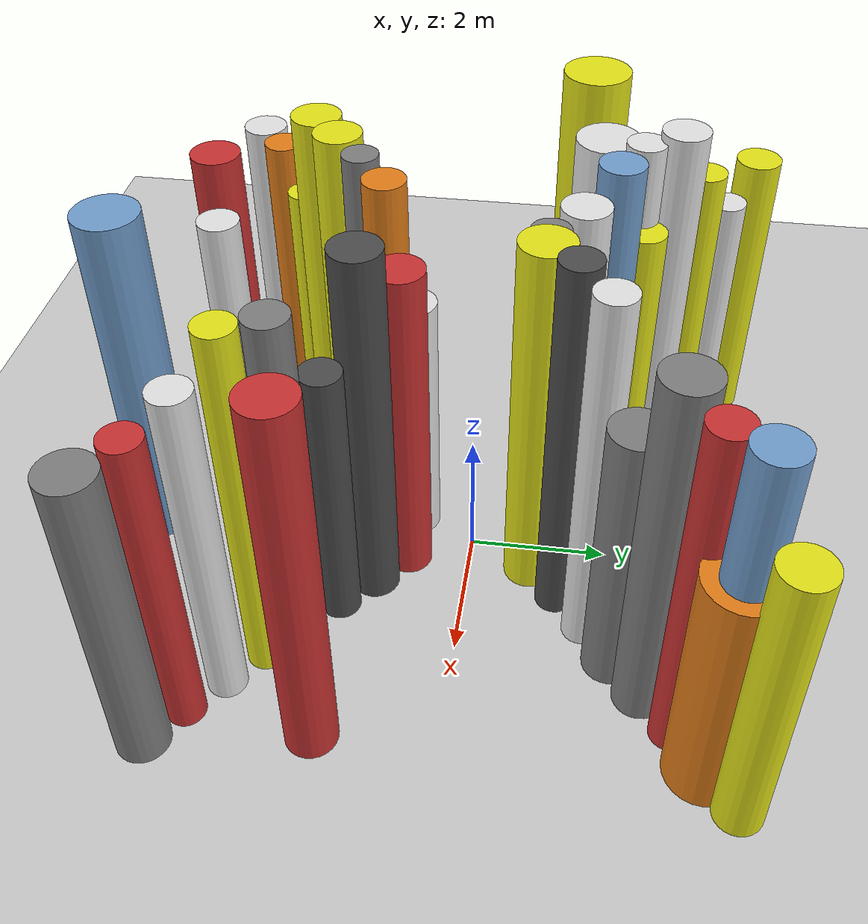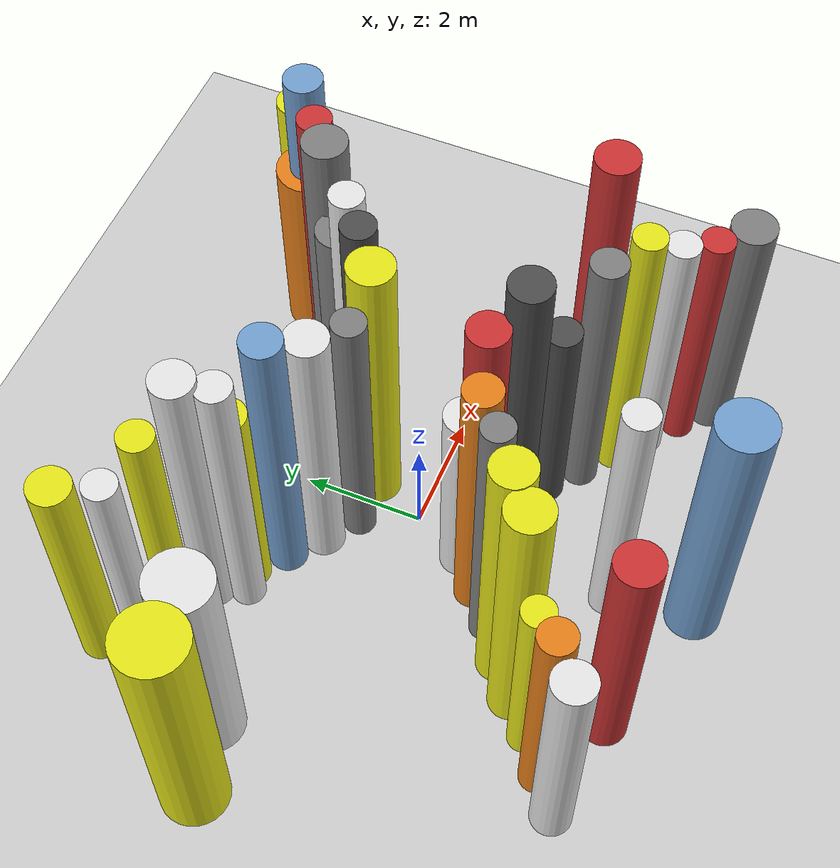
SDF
<?xml version='1.0'?>
<sdf version='1.6'>
  <world name='routeA_rl_v1__dense_recovery__rl_train__bottleneck_corridor__000061'>
    <!-- Sun light -->
    <light name='sun' type='directional'>
      <cast_shadows>1</cast_shadows>
      <pose>0 0 10 0 0 0</pose>
      <diffuse>0.8 0.8 0.8 1</diffuse>
      <specular>0.2 0.2 0.2 1</specular>
      <attenuation>
        <range>1000</range>
        <constant>0.9</constant>
        <linear>0.01</linear>
        <quadratic>0.001</quadratic>
      </attenuation>
      <direction>-0.5 0.1 -0.9</direction>
    </light>

    <!-- Ground plane -->
    <model name='ground_plane'>
      <static>1</static>
      <link name='link'>
        <collision name='collision'>
          <geometry>
            <plane>
              <normal>0 0 1</normal>
              <size>100 100</size>
            </plane>
          </geometry>
          <surface>
            <contact>
              <collide_bitmask>65535</collide_bitmask>
              <ode/>
            </contact>
            <friction>
              <ode>
                <mu>100</mu>
                <mu2>50</mu2>
              </ode>
              <torsional><ode/></torsional>
            </friction>
            <bounce/>
          </surface>
          <max_contacts>10</max_contacts>
        </collision>
        <visual name='visual'>
          <cast_shadows>0</cast_shadows>
          <geometry>
            <plane>
              <normal>0 0 1</normal>
              <size>100 100</size>
            </plane>
          </geometry>
          <material>
            <script>
              <uri>file://media/materials/scripts/gazebo.material</uri>
              <n>Gazebo/Grey</n>
            </script>
          </material>
        </visual>
      </link>
    </model>

    <!-- Environment -->
    <magnetic_field>6e-06 2.3e-05 -4.2e-05</magnetic_field>
    <atmosphere type='adiabatic'/>
    <physics name='default_physics' default='0' type='ode'>
      <gravity>0 0 -9.8</gravity>
      <max_step_size>0.004</max_step_size>
      <real_time_factor>1</real_time_factor>
      <real_time_update_rate>250</real_time_update_rate>
    </physics>
    <scene>
      <ambient>0.4 0.4 0.4 1</ambient>
      <background>0.7 0.7 0.7 1</background>
      <shadows>1</shadows>
    </scene>
    <wind/>
    <spherical_coordinates>
      <surface_model>EARTH_WGS84</surface_model>
      <latitude_deg>0</latitude_deg>
      <longitude_deg>0</longitude_deg>
      <elevation>0</elevation>
      <heading_deg>0</heading_deg>
    </spherical_coordinates>

    <!-- ============ OBSTACLES (40) ============ -->
    <model name='funnel_l_0'>
      <static>1</static>
      <link name='link'>
        <visual name='visual'>
          <geometry>
            <cylinder>
              <radius>0.3296</radius>
              <length>4.6782</length>
            </cylinder>
          </geometry>
          <material>
            <script>
              <n>Gazebo/White</n>
              <uri>file://media/materials/scripts/gazebo.material</uri>
            </script>
            <ambient>0.9 0.9 0.9 1</ambient>
          </material>
        </visual>
        <collision name='collision'>
          <geometry>
            <cylinder>
              <radius>0.3296</radius>
              <length>4.6782</length>
            </cylinder>
          </geometry>
          <max_contacts>10</max_contacts>
          <surface>
            <contact><ode/></contact>
            <bounce/>
            <friction>
              <ode><mu>1</mu><mu2>1</mu2></ode>
              <torsional><ode/></torsional>
            </friction>
          </surface>
        </collision>
      </link>
      <pose>-4.0000 -3.8000 2.3391 0 0 0.0000</pose>
    </model>

    <model name='funnel_r_0'>
      <static>1</static>
      <link name='link'>
        <visual name='visual'>
          <geometry>
            <cylinder>
              <radius>0.3338</radius>
              <length>4.6586</length>
            </cylinder>
          </geometry>
          <material>
            <script>
              <n>Gazebo/Yellow</n>
              <uri>file://media/materials/scripts/gazebo.material</uri>
            </script>
            <ambient>0.9 0.9 0.1 1</ambient>
          </material>
        </visual>
        <collision name='collision'>
          <geometry>
            <cylinder>
              <radius>0.3338</radius>
              <length>4.6586</length>
            </cylinder>
          </geometry>
          <max_contacts>10</max_contacts>
          <surface>
            <contact><ode/></contact>
            <bounce/>
            <friction>
              <ode><mu>1</mu><mu2>1</mu2></ode>
              <torsional><ode/></torsional>
            </friction>
          </surface>
        </collision>
      </link>
      <pose>-4.0000 3.8000 2.3293 0 0 0.0000</pose>
    </model>

    <model name='funnel_l_1'>
      <static>1</static>
      <link name='link'>
        <visual name='visual'>
          <geometry>
            <cylinder>
              <radius>0.2885</radius>
              <length>4.6906</length>
            </cylinder>
          </geometry>
          <material>
            <script>
              <n>Gazebo/Orange</n>
              <uri>file://media/materials/scripts/gazebo.material</uri>
            </script>
            <ambient>0.9 0.5 0.1 1</ambient>
          </material>
        </visual>
        <collision name='collision'>
          <geometry>
            <cylinder>
              <radius>0.2885</radius>
              <length>4.6906</length>
            </cylinder>
          </geometry>
          <max_contacts>10</max_contacts>
          <surface>
            <contact><ode/></contact>
            <bounce/>
            <friction>
              <ode><mu>1</mu><mu2>1</mu2></ode>
              <torsional><ode/></torsional>
            </friction>
          </surface>
        </collision>
      </link>
      <pose>-3.4857 -3.3857 2.3453 0 0 0.0000</pose>
    </model>

    <model name='funnel_r_1'>
      <static>1</static>
      <link name='link'>
        <visual name='visual'>
          <geometry>
            <cylinder>
              <radius>0.2758</radius>
              <length>4.1867</length>
            </cylinder>
          </geometry>
          <material>
            <script>
              <n>Gazebo/White</n>
              <uri>file://media/materials/scripts/gazebo.material</uri>
            </script>
            <ambient>0.9 0.9 0.9 1</ambient>
          </material>
        </visual>
        <collision name='collision'>
          <geometry>
            <cylinder>
              <radius>0.2758</radius>
              <length>4.1867</length>
            </cylinder>
          </geometry>
          <max_contacts>10</max_contacts>
          <surface>
            <contact><ode/></contact>
            <bounce/>
            <friction>
              <ode><mu>1</mu><mu2>1</mu2></ode>
              <torsional><ode/></torsional>
            </friction>
          </surface>
        </collision>
      </link>
      <pose>-3.4857 3.3857 2.0934 0 0 0.0000</pose>
    </model>

    <model name='funnel_l_2'>
      <static>1</static>
      <link name='link'>
        <visual name='visual'>
          <geometry>
            <cylinder>
              <radius>0.2601</radius>
              <length>4.1609</length>
            </cylinder>
          </geometry>
          <material>
            <script>
              <n>Gazebo/Yellow</n>
              <uri>file://media/materials/scripts/gazebo.material</uri>
            </script>
            <ambient>0.9 0.9 0.1 1</ambient>
          </material>
        </visual>
        <collision name='collision'>
          <geometry>
            <cylinder>
              <radius>0.2601</radius>
              <length>4.1609</length>
            </cylinder>
          </geometry>
          <max_contacts>10</max_contacts>
          <surface>
            <contact><ode/></contact>
            <bounce/>
            <friction>
              <ode><mu>1</mu><mu2>1</mu2></ode>
              <torsional><ode/></torsional>
            </friction>
          </surface>
        </collision>
      </link>
      <pose>-2.9714 -2.9714 2.0804 0 0 0.0000</pose>
    </model>

    <model name='funnel_r_2'>
      <static>1</static>
      <link name='link'>
        <visual name='visual'>
          <geometry>
            <cylinder>
              <radius>0.2829</radius>
              <length>4.9463</length>
            </cylinder>
          </geometry>
          <material>
            <script>
              <n>Gazebo/Yellow</n>
              <uri>file://media/materials/scripts/gazebo.material</uri>
            </script>
            <ambient>0.9 0.9 0.1 1</ambient>
          </material>
        </visual>
        <collision name='collision'>
          <geometry>
            <cylinder>
              <radius>0.2829</radius>
              <length>4.9463</length>
            </cylinder>
          </geometry>
          <max_contacts>10</max_contacts>
          <surface>
            <contact><ode/></contact>
            <bounce/>
            <friction>
              <ode><mu>1</mu><mu2>1</mu2></ode>
              <torsional><ode/></torsional>
            </friction>
          </surface>
        </collision>
      </link>
      <pose>-2.9714 2.9714 2.4732 0 0 0.0000</pose>
    </model>

    <model name='funnel_l_3'>
      <static>1</static>
      <link name='link'>
        <visual name='visual'>
          <geometry>
            <cylinder>
              <radius>0.3616</radius>
              <length>5.7167</length>
            </cylinder>
          </geometry>
          <material>
            <script>
              <n>Gazebo/Yellow</n>
              <uri>file://media/materials/scripts/gazebo.material</uri>
            </script>
            <ambient>0.9 0.9 0.1 1</ambient>
          </material>
        </visual>
        <collision name='collision'>
          <geometry>
            <cylinder>
              <radius>0.3616</radius>
              <length>5.7167</length>
            </cylinder>
          </geometry>
          <max_contacts>10</max_contacts>
          <surface>
            <contact><ode/></contact>
            <bounce/>
            <friction>
              <ode><mu>1</mu><mu2>1</mu2></ode>
              <torsional><ode/></torsional>
            </friction>
          </surface>
        </collision>
      </link>
      <pose>-2.4571 -2.5571 2.8584 0 0 0.0000</pose>
    </model>

    <model name='funnel_r_3'>
      <static>1</static>
      <link name='link'>
        <visual name='visual'>
          <geometry>
            <cylinder>
              <radius>0.3378</radius>
              <length>5.8382</length>
            </cylinder>
          </geometry>
          <material>
            <script>
              <n>Gazebo/White</n>
              <uri>file://media/materials/scripts/gazebo.material</uri>
            </script>
            <ambient>0.9 0.9 0.9 1</ambient>
          </material>
        </visual>
        <collision name='collision'>
          <geometry>
            <cylinder>
              <radius>0.3378</radius>
              <length>5.8382</length>
            </cylinder>
          </geometry>
          <max_contacts>10</max_contacts>
          <surface>
            <contact><ode/></contact>
            <bounce/>
            <friction>
              <ode><mu>1</mu><mu2>1</mu2></ode>
              <torsional><ode/></torsional>
            </friction>
          </surface>
        </collision>
      </link>
      <pose>-2.4571 2.5571 2.9191 0 0 0.0000</pose>
    </model>

    <model name='funnel_l_4'>
      <static>1</static>
      <link name='link'>
        <visual name='visual'>
          <geometry>
            <cylinder>
              <radius>0.3468</radius>
              <length>5.7445</length>
            </cylinder>
          </geometry>
          <material>
            <script>
              <n>Gazebo/Yellow</n>
              <uri>file://media/materials/scripts/gazebo.material</uri>
            </script>
            <ambient>0.9 0.9 0.1 1</ambient>
          </material>
        </visual>
        <collision name='collision'>
          <geometry>
            <cylinder>
              <radius>0.3468</radius>
              <length>5.7445</length>
            </cylinder>
          </geometry>
          <max_contacts>10</max_contacts>
          <surface>
            <contact><ode/></contact>
            <bounce/>
            <friction>
              <ode><mu>1</mu><mu2>1</mu2></ode>
              <torsional><ode/></torsional>
            </friction>
          </surface>
        </collision>
      </link>
      <pose>-1.9429 -2.1429 2.8723 0 0 0.0000</pose>
    </model>

    <model name='funnel_r_4'>
      <static>1</static>
      <link name='link'>
        <visual name='visual'>
          <geometry>
            <cylinder>
              <radius>0.3118</radius>
              <length>4.5264</length>
            </cylinder>
          </geometry>
          <material>
            <script>
              <n>Gazebo/Yellow</n>
              <uri>file://media/materials/scripts/gazebo.material</uri>
            </script>
            <ambient>0.9 0.9 0.1 1</ambient>
          </material>
        </visual>
        <collision name='collision'>
          <geometry>
            <cylinder>
              <radius>0.3118</radius>
              <length>4.5264</length>
            </cylinder>
          </geometry>
          <max_contacts>10</max_contacts>
          <surface>
            <contact><ode/></contact>
            <bounce/>
            <friction>
              <ode><mu>1</mu><mu2>1</mu2></ode>
              <torsional><ode/></torsional>
            </friction>
          </surface>
        </collision>
      </link>
      <pose>-1.9429 2.1429 2.2632 0 0 0.0000</pose>
    </model>

    <model name='funnel_l_5'>
      <static>1</static>
      <link name='link'>
        <visual name='visual'>
          <geometry>
            <cylinder>
              <radius>0.2557</radius>
              <length>5.7266</length>
            </cylinder>
          </geometry>
          <material>
            <script>
              <n>Gazebo/Grey</n>
              <uri>file://media/materials/scripts/gazebo.material</uri>
            </script>
            <ambient>0.5 0.5 0.5 1</ambient>
          </material>
        </visual>
        <collision name='collision'>
          <geometry>
            <cylinder>
              <radius>0.2557</radius>
              <length>5.7266</length>
            </cylinder>
          </geometry>
          <max_contacts>10</max_contacts>
          <surface>
            <contact><ode/></contact>
            <bounce/>
            <friction>
              <ode><mu>1</mu><mu2>1</mu2></ode>
              <torsional><ode/></torsional>
            </friction>
          </surface>
        </collision>
      </link>
      <pose>-1.4286 -1.7286 2.8633 0 0 0.0000</pose>
    </model>

    <model name='funnel_r_5'>
      <static>1</static>
      <link name='link'>
        <visual name='visual'>
          <geometry>
            <cylinder>
              <radius>0.3198</radius>
              <length>5.8466</length>
            </cylinder>
          </geometry>
          <material>
            <script>
              <n>Gazebo/Blue</n>
              <uri>file://media/materials/scripts/gazebo.material</uri>
            </script>
            <ambient>0.447 0.624 0.812 1</ambient>
          </material>
        </visual>
        <collision name='collision'>
          <geometry>
            <cylinder>
              <radius>0.3198</radius>
              <length>5.8466</length>
            </cylinder>
          </geometry>
          <max_contacts>10</max_contacts>
          <surface>
            <contact><ode/></contact>
            <bounce/>
            <friction>
              <ode><mu>1</mu><mu2>1</mu2></ode>
              <torsional><ode/></torsional>
            </friction>
          </surface>
        </collision>
      </link>
      <pose>-1.4286 1.7286 2.9233 0 0 0.0000</pose>
    </model>

    <model name='funnel_l_6'>
      <static>1</static>
      <link name='link'>
        <visual name='visual'>
          <geometry>
            <cylinder>
              <radius>0.3015</radius>
              <length>5.6739</length>
            </cylinder>
          </geometry>
          <material>
            <script>
              <n>Gazebo/Orange</n>
              <uri>file://media/materials/scripts/gazebo.material</uri>
            </script>
            <ambient>0.9 0.5 0.1 1</ambient>
          </material>
        </visual>
        <collision name='collision'>
          <geometry>
            <cylinder>
              <radius>0.3015</radius>
              <length>5.6739</length>
            </cylinder>
          </geometry>
          <max_contacts>10</max_contacts>
          <surface>
            <contact><ode/></contact>
            <bounce/>
            <friction>
              <ode><mu>1</mu><mu2>1</mu2></ode>
              <torsional><ode/></torsional>
            </friction>
          </surface>
        </collision>
      </link>
      <pose>-0.9143 -1.3143 2.8370 0 0 0.0000</pose>
    </model>

    <model name='funnel_r_6'>
      <static>1</static>
      <link name='link'>
        <visual name='visual'>
          <geometry>
            <cylinder>
              <radius>0.3422</radius>
              <length>5.4847</length>
            </cylinder>
          </geometry>
          <material>
            <script>
              <n>Gazebo/White</n>
              <uri>file://media/materials/scripts/gazebo.material</uri>
            </script>
            <ambient>0.9 0.9 0.9 1</ambient>
          </material>
        </visual>
        <collision name='collision'>
          <geometry>
            <cylinder>
              <radius>0.3422</radius>
              <length>5.4847</length>
            </cylinder>
          </geometry>
          <max_contacts>10</max_contacts>
          <surface>
            <contact><ode/></contact>
            <bounce/>
            <friction>
              <ode><mu>1</mu><mu2>1</mu2></ode>
              <torsional><ode/></torsional>
            </friction>
          </surface>
        </collision>
      </link>
      <pose>-0.9143 1.3143 2.7423 0 0 0.0000</pose>
    </model>

    <model name='funnel_l_7'>
      <static>1</static>
      <link name='link'>
        <visual name='visual'>
          <geometry>
            <cylinder>
              <radius>0.3437</radius>
              <length>4.1349</length>
            </cylinder>
          </geometry>
          <material>
            <script>
              <n>Gazebo/White</n>
              <uri>file://media/materials/scripts/gazebo.material</uri>
            </script>
            <ambient>0.9 0.9 0.9 1</ambient>
          </material>
        </visual>
        <collision name='collision'>
          <geometry>
            <cylinder>
              <radius>0.3437</radius>
              <length>4.1349</length>
            </cylinder>
          </geometry>
          <max_contacts>10</max_contacts>
          <surface>
            <contact><ode/></contact>
            <bounce/>
            <friction>
              <ode><mu>1</mu><mu2>1</mu2></ode>
              <torsional><ode/></torsional>
            </friction>
          </surface>
        </collision>
      </link>
      <pose>-0.4000 -0.9000 2.0674 0 0 0.0000</pose>
    </model>

    <model name='funnel_r_7'>
      <static>1</static>
      <link name='link'>
        <visual name='visual'>
          <geometry>
            <cylinder>
              <radius>0.2694</radius>
              <length>5.4249</length>
            </cylinder>
          </geometry>
          <material>
            <script>
              <n>Gazebo/Grey</n>
              <uri>file://media/materials/scripts/gazebo.material</uri>
            </script>
            <ambient>0.5 0.5 0.5 1</ambient>
          </material>
        </visual>
        <collision name='collision'>
          <geometry>
            <cylinder>
              <radius>0.2694</radius>
              <length>5.4249</length>
            </cylinder>
          </geometry>
          <max_contacts>10</max_contacts>
          <surface>
            <contact><ode/></contact>
            <bounce/>
            <friction>
              <ode><mu>1</mu><mu2>1</mu2></ode>
              <torsional><ode/></torsional>
            </friction>
          </surface>
        </collision>
      </link>
      <pose>-0.4000 0.9000 2.7124 0 0 0.0000</pose>
    </model>

    <model name='funnel_out_l_0'>
      <static>1</static>
      <link name='link'>
        <visual name='visual'>
          <geometry>
            <cylinder>
              <radius>0.3402</radius>
              <length>5.2058</length>
            </cylinder>
          </geometry>
          <material>
            <script>
              <n>Gazebo/Red</n>
              <uri>file://media/materials/scripts/gazebo.material</uri>
            </script>
            <ambient>0.8 0.2 0.2 1</ambient>
          </material>
        </visual>
        <collision name='collision'>
          <geometry>
            <cylinder>
              <radius>0.3402</radius>
              <length>5.2058</length>
            </cylinder>
          </geometry>
          <max_contacts>10</max_contacts>
          <surface>
            <contact><ode/></contact>
            <bounce/>
            <friction>
              <ode><mu>1</mu><mu2>1</mu2></ode>
              <torsional><ode/></torsional>
            </friction>
          </surface>
        </collision>
      </link>
      <pose>0.4000 -0.9000 2.6029 0 0 0.0000</pose>
    </model>

    <model name='funnel_out_r_0'>
      <static>1</static>
      <link name='link'>
        <visual name='visual'>
          <geometry>
            <cylinder>
              <radius>0.3725</radius>
              <length>5.7623</length>
            </cylinder>
          </geometry>
          <material>
            <script>
              <n>Gazebo/Yellow</n>
              <uri>file://media/materials/scripts/gazebo.material</uri>
            </script>
            <ambient>0.9 0.9 0.1 1</ambient>
          </material>
        </visual>
        <collision name='collision'>
          <geometry>
            <cylinder>
              <radius>0.3725</radius>
              <length>5.7623</length>
            </cylinder>
          </geometry>
          <max_contacts>10</max_contacts>
          <surface>
            <contact><ode/></contact>
            <bounce/>
            <friction>
              <ode><mu>1</mu><mu2>1</mu2></ode>
              <torsional><ode/></torsional>
            </friction>
          </surface>
        </collision>
      </link>
      <pose>0.4000 0.9000 2.8812 0 0 0.0000</pose>
    </model>

    <model name='funnel_out_l_1'>
      <static>1</static>
      <link name='link'>
        <visual name='visual'>
          <geometry>
            <cylinder>
              <radius>0.3487</radius>
              <length>5.8182</length>
            </cylinder>
          </geometry>
          <material>
            <script>
              <n>Gazebo/DarkGrey</n>
              <uri>file://media/materials/scripts/gazebo.material</uri>
            </script>
            <ambient>0.3 0.3 0.3 1</ambient>
          </material>
        </visual>
        <collision name='collision'>
          <geometry>
            <cylinder>
              <radius>0.3487</radius>
              <length>5.8182</length>
            </cylinder>
          </geometry>
          <max_contacts>10</max_contacts>
          <surface>
            <contact><ode/></contact>
            <bounce/>
            <friction>
              <ode><mu>1</mu><mu2>1</mu2></ode>
              <torsional><ode/></torsional>
            </friction>
          </surface>
        </collision>
      </link>
      <pose>0.9143 -1.3143 2.9091 0 0 0.0000</pose>
    </model>

    <model name='funnel_out_r_1'>
      <static>1</static>
      <link name='link'>
        <visual name='visual'>
          <geometry>
            <cylinder>
              <radius>0.2793</radius>
              <length>5.8883</length>
            </cylinder>
          </geometry>
          <material>
            <script>
              <n>Gazebo/DarkGrey</n>
              <uri>file://media/materials/scripts/gazebo.material</uri>
            </script>
            <ambient>0.3 0.3 0.3 1</ambient>
          </material>
        </visual>
        <collision name='collision'>
          <geometry>
            <cylinder>
              <radius>0.2793</radius>
              <length>5.8883</length>
            </cylinder>
          </geometry>
          <max_contacts>10</max_contacts>
          <surface>
            <contact><ode/></contact>
            <bounce/>
            <friction>
              <ode><mu>1</mu><mu2>1</mu2></ode>
              <torsional><ode/></torsional>
            </friction>
          </surface>
        </collision>
      </link>
      <pose>0.9143 1.3143 2.9442 0 0 0.0000</pose>
    </model>

    <model name='funnel_out_l_2'>
      <static>1</static>
      <link name='link'>
        <visual name='visual'>
          <geometry>
            <cylinder>
              <radius>0.2882</radius>
              <length>4.3136</length>
            </cylinder>
          </geometry>
          <material>
            <script>
              <n>Gazebo/DarkGrey</n>
              <uri>file://media/materials/scripts/gazebo.material</uri>
            </script>
            <ambient>0.3 0.3 0.3 1</ambient>
          </material>
        </visual>
        <collision name='collision'>
          <geometry>
            <cylinder>
              <radius>0.2882</radius>
              <length>4.3136</length>
            </cylinder>
          </geometry>
          <max_contacts>10</max_contacts>
          <surface>
            <contact><ode/></contact>
            <bounce/>
            <friction>
              <ode><mu>1</mu><mu2>1</mu2></ode>
              <torsional><ode/></torsional>
            </friction>
          </surface>
        </collision>
      </link>
      <pose>1.4286 -1.7286 2.1568 0 0 0.0000</pose>
    </model>

    <model name='funnel_out_r_2'>
      <static>1</static>
      <link name='link'>
        <visual name='visual'>
          <geometry>
            <cylinder>
              <radius>0.2757</radius>
              <length>5.8327</length>
            </cylinder>
          </geometry>
          <material>
            <script>
              <n>Gazebo/White</n>
              <uri>file://media/materials/scripts/gazebo.material</uri>
            </script>
            <ambient>0.9 0.9 0.9 1</ambient>
          </material>
        </visual>
        <collision name='collision'>
          <geometry>
            <cylinder>
              <radius>0.2757</radius>
              <length>5.8327</length>
            </cylinder>
          </geometry>
          <max_contacts>10</max_contacts>
          <surface>
            <contact><ode/></contact>
            <bounce/>
            <friction>
              <ode><mu>1</mu><mu2>1</mu2></ode>
              <torsional><ode/></torsional>
            </friction>
          </surface>
        </collision>
      </link>
      <pose>1.4286 1.7286 2.9163 0 0 0.0000</pose>
    </model>

    <model name='funnel_out_l_3'>
      <static>1</static>
      <link name='link'>
        <visual name='visual'>
          <geometry>
            <cylinder>
              <radius>0.2960</radius>
              <length>5.5155</length>
            </cylinder>
          </geometry>
          <material>
            <script>
              <n>Gazebo/Grey</n>
              <uri>file://media/materials/scripts/gazebo.material</uri>
            </script>
            <ambient>0.5 0.5 0.5 1</ambient>
          </material>
        </visual>
        <collision name='collision'>
          <geometry>
            <cylinder>
              <radius>0.2960</radius>
              <length>5.5155</length>
            </cylinder>
          </geometry>
          <max_contacts>10</max_contacts>
          <surface>
            <contact><ode/></contact>
            <bounce/>
            <friction>
              <ode><mu>1</mu><mu2>1</mu2></ode>
              <torsional><ode/></torsional>
            </friction>
          </surface>
        </collision>
      </link>
      <pose>1.9429 -2.1429 2.7577 0 0 0.0000</pose>
    </model>

    <model name='funnel_out_r_3'>
      <static>1</static>
      <link name='link'>
        <visual name='visual'>
          <geometry>
            <cylinder>
              <radius>0.3844</radius>
              <length>4.3150</length>
            </cylinder>
          </geometry>
          <material>
            <script>
              <n>Gazebo/Grey</n>
              <uri>file://media/materials/scripts/gazebo.material</uri>
            </script>
            <ambient>0.5 0.5 0.5 1</ambient>
          </material>
        </visual>
        <collision name='collision'>
          <geometry>
            <cylinder>
              <radius>0.3844</radius>
              <length>4.3150</length>
            </cylinder>
          </geometry>
          <max_contacts>10</max_contacts>
          <surface>
            <contact><ode/></contact>
            <bounce/>
            <friction>
              <ode><mu>1</mu><mu2>1</mu2></ode>
              <torsional><ode/></torsional>
            </friction>
          </surface>
        </collision>
      </link>
      <pose>1.9429 2.1429 2.1575 0 0 0.0000</pose>
    </model>

    <model name='funnel_out_l_4'>
      <static>1</static>
      <link name='link'>
        <visual name='visual'>
          <geometry>
            <cylinder>
              <radius>0.2672</radius>
              <length>5.7149</length>
            </cylinder>
          </geometry>
          <material>
            <script>
              <n>Gazebo/Yellow</n>
              <uri>file://media/materials/scripts/gazebo.material</uri>
            </script>
            <ambient>0.9 0.9 0.1 1</ambient>
          </material>
        </visual>
        <collision name='collision'>
          <geometry>
            <cylinder>
              <radius>0.2672</radius>
              <length>5.7149</length>
            </cylinder>
          </geometry>
          <max_contacts>10</max_contacts>
          <surface>
            <contact><ode/></contact>
            <bounce/>
            <friction>
              <ode><mu>1</mu><mu2>1</mu2></ode>
              <torsional><ode/></torsional>
            </friction>
          </surface>
        </collision>
      </link>
      <pose>2.4571 -2.5571 2.8575 0 0 0.0000</pose>
    </model>

    <model name='funnel_out_r_4'>
      <static>1</static>
      <link name='link'>
        <visual name='visual'>
          <geometry>
            <cylinder>
              <radius>0.3666</radius>
              <length>5.5922</length>
            </cylinder>
          </geometry>
          <material>
            <script>
              <n>Gazebo/Grey</n>
              <uri>file://media/materials/scripts/gazebo.material</uri>
            </script>
            <ambient>0.5 0.5 0.5 1</ambient>
          </material>
        </visual>
        <collision name='collision'>
          <geometry>
            <cylinder>
              <radius>0.3666</radius>
              <length>5.5922</length>
            </cylinder>
          </geometry>
          <max_contacts>10</max_contacts>
          <surface>
            <contact><ode/></contact>
            <bounce/>
            <friction>
              <ode><mu>1</mu><mu2>1</mu2></ode>
              <torsional><ode/></torsional>
            </friction>
          </surface>
        </collision>
      </link>
      <pose>2.4571 2.5571 2.7961 0 0 0.0000</pose>
    </model>

    <model name='funnel_out_l_5'>
      <static>1</static>
      <link name='link'>
        <visual name='visual'>
          <geometry>
            <cylinder>
              <radius>0.2751</radius>
              <length>5.1747</length>
            </cylinder>
          </geometry>
          <material>
            <script>
              <n>Gazebo/White</n>
              <uri>file://media/materials/scripts/gazebo.material</uri>
            </script>
            <ambient>0.9 0.9 0.9 1</ambient>
          </material>
        </visual>
        <collision name='collision'>
          <geometry>
            <cylinder>
              <radius>0.2751</radius>
              <length>5.1747</length>
            </cylinder>
          </geometry>
          <max_contacts>10</max_contacts>
          <surface>
            <contact><ode/></contact>
            <bounce/>
            <friction>
              <ode><mu>1</mu><mu2>1</mu2></ode>
              <torsional><ode/></torsional>
            </friction>
          </surface>
        </collision>
      </link>
      <pose>2.9714 -2.9714 2.5874 0 0 0.0000</pose>
    </model>

    <model name='funnel_out_r_5'>
      <static>1</static>
      <link name='link'>
        <visual name='visual'>
          <geometry>
            <cylinder>
              <radius>0.2851</radius>
              <length>5.4258</length>
            </cylinder>
          </geometry>
          <material>
            <script>
              <n>Gazebo/Red</n>
              <uri>file://media/materials/scripts/gazebo.material</uri>
            </script>
            <ambient>0.8 0.2 0.2 1</ambient>
          </material>
        </visual>
        <collision name='collision'>
          <geometry>
            <cylinder>
              <radius>0.2851</radius>
              <length>5.4258</length>
            </cylinder>
          </geometry>
          <max_contacts>10</max_contacts>
          <surface>
            <contact><ode/></contact>
            <bounce/>
            <friction>
              <ode><mu>1</mu><mu2>1</mu2></ode>
              <torsional><ode/></torsional>
            </friction>
          </surface>
        </collision>
      </link>
      <pose>2.9714 2.9714 2.7129 0 0 0.0000</pose>
    </model>

    <model name='funnel_out_l_6'>
      <static>1</static>
      <link name='link'>
        <visual name='visual'>
          <geometry>
            <cylinder>
              <radius>0.2692</radius>
              <length>4.8970</length>
            </cylinder>
          </geometry>
          <material>
            <script>
              <n>Gazebo/Red</n>
              <uri>file://media/materials/scripts/gazebo.material</uri>
            </script>
            <ambient>0.8 0.2 0.2 1</ambient>
          </material>
        </visual>
        <collision name='collision'>
          <geometry>
            <cylinder>
              <radius>0.2692</radius>
              <length>4.8970</length>
            </cylinder>
          </geometry>
          <max_contacts>10</max_contacts>
          <surface>
            <contact><ode/></contact>
            <bounce/>
            <friction>
              <ode><mu>1</mu><mu2>1</mu2></ode>
              <torsional><ode/></torsional>
            </friction>
          </surface>
        </collision>
      </link>
      <pose>3.4857 -3.3857 2.4485 0 0 0.0000</pose>
    </model>

    <model name='funnel_out_r_6'>
      <static>1</static>
      <link name='link'>
        <visual name='visual'>
          <geometry>
            <cylinder>
              <radius>0.3205</radius>
              <length>5.6362</length>
            </cylinder>
          </geometry>
          <material>
            <script>
              <n>Gazebo/Blue</n>
              <uri>file://media/materials/scripts/gazebo.material</uri>
            </script>
            <ambient>0.447 0.624 0.812 1</ambient>
          </material>
        </visual>
        <collision name='collision'>
          <geometry>
            <cylinder>
              <radius>0.3205</radius>
              <length>5.6362</length>
            </cylinder>
          </geometry>
          <max_contacts>10</max_contacts>
          <surface>
            <contact><ode/></contact>
            <bounce/>
            <friction>
              <ode><mu>1</mu><mu2>1</mu2></ode>
              <torsional><ode/></torsional>
            </friction>
          </surface>
        </collision>
      </link>
      <pose>3.4857 3.3857 2.8181 0 0 0.0000</pose>
    </model>

    <model name='funnel_out_l_7'>
      <static>1</static>
      <link name='link'>
        <visual name='visual'>
          <geometry>
            <cylinder>
              <radius>0.3639</radius>
              <length>4.8304</length>
            </cylinder>
          </geometry>
          <material>
            <script>
              <n>Gazebo/Grey</n>
              <uri>file://media/materials/scripts/gazebo.material</uri>
            </script>
            <ambient>0.5 0.5 0.5 1</ambient>
          </material>
        </visual>
        <collision name='collision'>
          <geometry>
            <cylinder>
              <radius>0.3639</radius>
              <length>4.8304</length>
            </cylinder>
          </geometry>
          <max_contacts>10</max_contacts>
          <surface>
            <contact><ode/></contact>
            <bounce/>
            <friction>
              <ode><mu>1</mu><mu2>1</mu2></ode>
              <torsional><ode/></torsional>
            </friction>
          </surface>
        </collision>
      </link>
      <pose>4.0000 -3.8000 2.4152 0 0 0.0000</pose>
    </model>

    <model name='funnel_out_r_7'>
      <static>1</static>
      <link name='link'>
        <visual name='visual'>
          <geometry>
            <cylinder>
              <radius>0.3349</radius>
              <length>4.5286</length>
            </cylinder>
          </geometry>
          <material>
            <script>
              <n>Gazebo/Yellow</n>
              <uri>file://media/materials/scripts/gazebo.material</uri>
            </script>
            <ambient>0.9 0.9 0.1 1</ambient>
          </material>
        </visual>
        <collision name='collision'>
          <geometry>
            <cylinder>
              <radius>0.3349</radius>
              <length>4.5286</length>
            </cylinder>
          </geometry>
          <max_contacts>10</max_contacts>
          <surface>
            <contact><ode/></contact>
            <bounce/>
            <friction>
              <ode><mu>1</mu><mu2>1</mu2></ode>
              <torsional><ode/></torsional>
            </friction>
          </surface>
        </collision>
      </link>
      <pose>4.0000 3.8000 2.2643 0 0 0.0000</pose>
    </model>

    <model name='bn_scatter_0'>
      <static>1</static>
      <link name='link'>
        <visual name='visual'>
          <geometry>
            <cylinder>
              <radius>0.3651</radius>
              <length>5.0982</length>
            </cylinder>
          </geometry>
          <material>
            <script>
              <n>Gazebo/Red</n>
              <uri>file://media/materials/scripts/gazebo.material</uri>
            </script>
            <ambient>0.8 0.2 0.2 1</ambient>
          </material>
        </visual>
        <collision name='collision'>
          <geometry>
            <cylinder>
              <radius>0.3651</radius>
              <length>5.0982</length>
            </cylinder>
          </geometry>
          <max_contacts>10</max_contacts>
          <surface>
            <contact><ode/></contact>
            <bounce/>
            <friction>
              <ode><mu>1</mu><mu2>1</mu2></ode>
              <torsional><ode/></torsional>
            </friction>
          </surface>
        </collision>
      </link>
      <pose>-2.3019 -4.0518 2.5491 0 0 0.0000</pose>
    </model>

    <model name='bn_scatter_1'>
      <static>1</static>
      <link name='link'>
        <visual name='visual'>
          <geometry>
            <cylinder>
              <radius>0.5149</radius>
              <length>4.5385</length>
            </cylinder>
          </geometry>
          <material>
            <script>
              <n>Gazebo/White</n>
              <uri>file://media/materials/scripts/gazebo.material</uri>
            </script>
            <ambient>0.9 0.9 0.9 1</ambient>
          </material>
        </visual>
        <collision name='collision'>
          <geometry>
            <cylinder>
              <radius>0.5149</radius>
              <length>4.5385</length>
            </cylinder>
          </geometry>
          <max_contacts>10</max_contacts>
          <surface>
            <contact><ode/></contact>
            <bounce/>
            <friction>
              <ode><mu>1</mu><mu2>1</mu2></ode>
              <torsional><ode/></torsional>
            </friction>
          </surface>
        </collision>
      </link>
      <pose>-4.5743 1.5409 2.2693 0 0 0.0000</pose>
    </model>

    <model name='bn_scatter_2'>
      <static>1</static>
      <link name='link'>
        <visual name='visual'>
          <geometry>
            <cylinder>
              <radius>0.5381</radius>
              <length>3.6738</length>
            </cylinder>
          </geometry>
          <material>
            <script>
              <n>Gazebo/Orange</n>
              <uri>file://media/materials/scripts/gazebo.material</uri>
            </script>
            <ambient>0.9 0.5 0.1 1</ambient>
          </material>
        </visual>
        <collision name='collision'>
          <geometry>
            <cylinder>
              <radius>0.5381</radius>
              <length>3.6738</length>
            </cylinder>
          </geometry>
          <max_contacts>10</max_contacts>
          <surface>
            <contact><ode/></contact>
            <bounce/>
            <friction>
              <ode><mu>1</mu><mu2>1</mu2></ode>
              <torsional><ode/></torsional>
            </friction>
          </surface>
        </collision>
      </link>
      <pose>3.4562 3.3903 1.8369 0 0 0.0000</pose>
    </model>

    <model name='bn_scatter_3'>
      <static>1</static>
      <link name='link'>
        <visual name='visual'>
          <geometry>
            <cylinder>
              <radius>0.2818</radius>
              <length>5.3110</length>
            </cylinder>
          </geometry>
          <material>
            <script>
              <n>Gazebo/White</n>
              <uri>file://media/materials/scripts/gazebo.material</uri>
            </script>
            <ambient>0.9 0.9 0.9 1</ambient>
          </material>
        </visual>
        <collision name='collision'>
          <geometry>
            <cylinder>
              <radius>0.2818</radius>
              <length>5.3110</length>
            </cylinder>
          </geometry>
          <max_contacts>10</max_contacts>
          <surface>
            <contact><ode/></contact>
            <bounce/>
            <friction>
              <ode><mu>1</mu><mu2>1</mu2></ode>
              <torsional><ode/></torsional>
            </friction>
          </surface>
        </collision>
      </link>
      <pose>-0.2195 -3.3607 2.6555 0 0 0.0000</pose>
    </model>

    <model name='bn_scatter_4'>
      <static>1</static>
      <link name='link'>
        <visual name='visual'>
          <geometry>
            <cylinder>
              <radius>0.5503</radius>
              <length>5.1221</length>
            </cylinder>
          </geometry>
          <material>
            <script>
              <n>Gazebo/Yellow</n>
              <uri>file://media/materials/scripts/gazebo.material</uri>
            </script>
            <ambient>0.9 0.9 0.1 1</ambient>
          </material>
        </visual>
        <collision name='collision'>
          <geometry>
            <cylinder>
              <radius>0.5503</radius>
              <length>5.1221</length>
            </cylinder>
          </geometry>
          <max_contacts>10</max_contacts>
          <surface>
            <contact><ode/></contact>
            <bounce/>
            <friction>
              <ode><mu>1</mu><mu2>1</mu2></ode>
              <torsional><ode/></torsional>
            </friction>
          </surface>
        </collision>
      </link>
      <pose>-5.7105 1.2819 2.5611 0 0 0.0000</pose>
    </model>

    <model name='bn_scatter_5'>
      <static>1</static>
      <link name='link'>
        <visual name='visual'>
          <geometry>
            <cylinder>
              <radius>0.4568</radius>
              <length>5.4714</length>
            </cylinder>
          </geometry>
          <material>
            <script>
              <n>Gazebo/Blue</n>
              <uri>file://media/materials/scripts/gazebo.material</uri>
            </script>
            <ambient>0.447 0.624 0.812 1</ambient>
          </material>
        </visual>
        <collision name='collision'>
          <geometry>
            <cylinder>
              <radius>0.4568</radius>
              <length>5.4714</length>
            </cylinder>
          </geometry>
          <max_contacts>10</max_contacts>
          <surface>
            <contact><ode/></contact>
            <bounce/>
            <friction>
              <ode><mu>1</mu><mu2>1</mu2></ode>
              <torsional><ode/></torsional>
            </friction>
          </surface>
        </collision>
      </link>
      <pose>0.0442 -4.7385 2.7357 0 0 0.0000</pose>
    </model>

    <model name='bn_scatter_6'>
      <static>1</static>
      <link name='link'>
        <visual name='visual'>
          <geometry>
            <cylinder>
              <radius>0.2818</radius>
              <length>5.7128</length>
            </cylinder>
          </geometry>
          <material>
            <script>
              <n>Gazebo/White</n>
              <uri>file://media/materials/scripts/gazebo.material</uri>
            </script>
            <ambient>0.9 0.9 0.9 1</ambient>
          </material>
        </visual>
        <collision name='collision'>
          <geometry>
            <cylinder>
              <radius>0.2818</radius>
              <length>5.7128</length>
            </cylinder>
          </geometry>
          <max_contacts>10</max_contacts>
          <surface>
            <contact><ode/></contact>
            <bounce/>
            <friction>
              <ode><mu>1</mu><mu2>1</mu2></ode>
              <torsional><ode/></torsional>
            </friction>
          </surface>
        </collision>
      </link>
      <pose>-2.2816 2.0444 2.8564 0 0 0.0000</pose>
    </model>

    <model name='bn_scatter_7'>
      <static>1</static>
      <link name='link'>
        <visual name='visual'>
          <geometry>
            <cylinder>
              <radius>0.3599</radius>
              <length>5.8122</length>
            </cylinder>
          </geometry>
          <material>
            <script>
              <n>Gazebo/Red</n>
              <uri>file://media/materials/scripts/gazebo.material</uri>
            </script>
            <ambient>0.8 0.2 0.2 1</ambient>
          </material>
        </visual>
        <collision name='collision'>
          <geometry>
            <cylinder>
              <radius>0.3599</radius>
              <length>5.8122</length>
            </cylinder>
          </geometry>
          <max_contacts>10</max_contacts>
          <surface>
            <contact><ode/></contact>
            <bounce/>
            <friction>
              <ode><mu>1</mu><mu2>1</mu2></ode>
              <torsional><ode/></torsional>
            </friction>
          </surface>
        </collision>
      </link>
      <pose>3.6385 -1.6517 2.9061 0 0 0.0000</pose>
    </model>

    <!-- GUI camera -->
    <gui fullscreen='0'>
      <camera name='user_camera'>
        <pose>-15 0 18 0 0.85 0.15</pose>
        <view_controller>orbit</view_controller>
        <projection_type>perspective</projection_type>
      </camera>
    </gui>
  </world>
</sdf>
